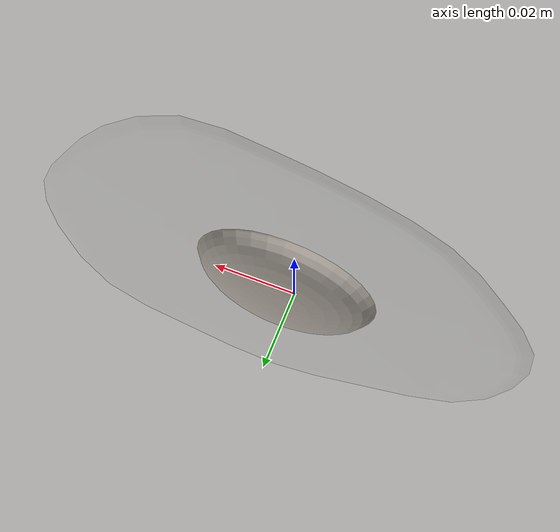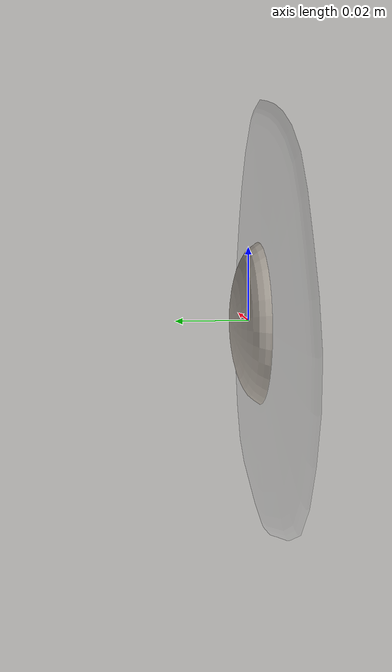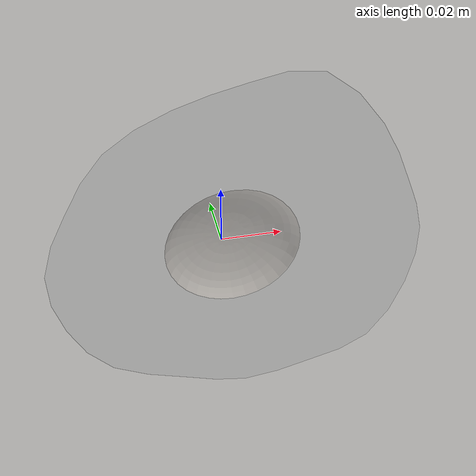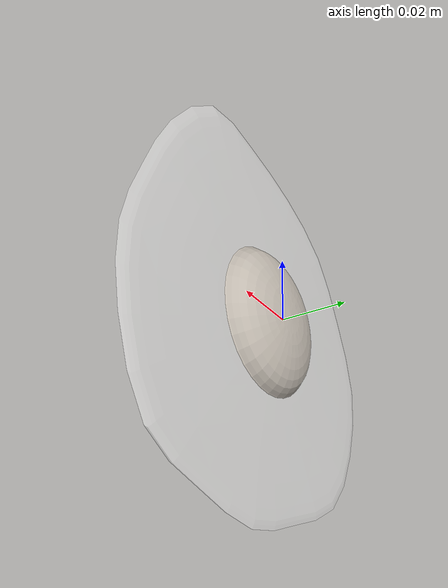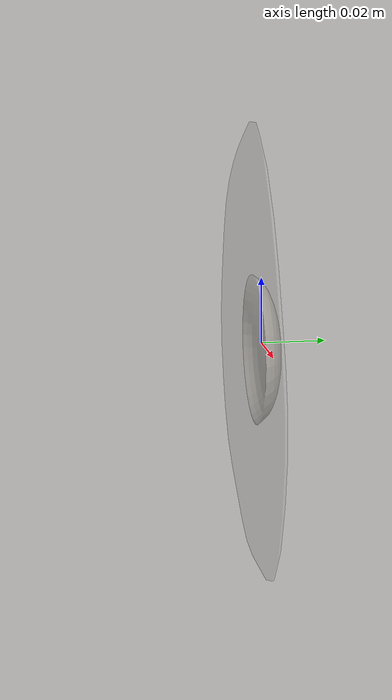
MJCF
<mujoco model="Egg_Cracked_1">
  <compiler autolimits="true" boundmass="0.01" angle="radian"/>
  <default>
    <default class="/">
      <default class="__VISUAL_MJT__">
        <geom contype="0" conaffinity="0" group="0"/>
      </default>
      <default class="__STRUCTURAL_MJT__">
        <geom contype="8" conaffinity="15" group="4" friction="0.90000000000000002 0.90000000000000002 0.001" solref="0.025000000000000001 1" solimp="0.998 0.998 0.001"/>
      </default>
      <default class="__DYNAMIC_MJT__">
        <geom contype="1" conaffinity="15" group="4" friction="0.90000000000000002 0.90000000000000002 0.001" solref="0.025000000000000001 1" solimp="0.998 0.998 0.001"/>
      </default>
    </default>
  </default>
  <asset>
    <texture name="Fried_Egg_White_Uncooked_Mat" type="2d" file="Fried_Egg_AlbedoTransparency.png"/>
    <material name="material_Fried_Egg_White_Uncooked_Mat" class="/" texture="Fried_Egg_White_Uncooked_Mat" specular="0.5" shininess="0.5" rgba="1 1 1 0.5"/>
    <texture name="Fried_Egg_Yolk_Mat" type="2d" file="Fried_Egg_AlbedoTransparency.png"/>
    <material name="material_Fried_Egg_Yolk_Mat" class="/" texture="Fried_Egg_Yolk_Mat" specular="0.5" shininess="0.5" rgba="1 1 1 1"/>
    <mesh name="Egg_Cracked_1_fried_egg_1_0" class="/" file="Egg_Cracked_1_fried_egg_1/Egg_Cracked_1_fried_egg_1_0.obj" scale="1 1 1"/>
    <mesh name="Egg_Cracked_1_fried_egg_1_1" class="/" file="Egg_Cracked_1_fried_egg_1/Egg_Cracked_1_fried_egg_1_1.obj" scale="1 1 1"/>
  </asset>
  <worldbody>
    <body name="Egg_Cracked_1">
      <joint name="Egg_Cracked_1_free" class="/" type="free" pos="0 0 0" axis="0 0 1" stiffness="0" range="0 0" armature="0" damping="0.10000000000000001" frictionloss="0"/>
      <body name="Egg_Cracked_1_fried_egg_1" pos="0.0032100000000000002 -0.0061999999999999998 -0.0011999999999999999" quat="1 0 0 0">
        <geom name="Egg_Cracked_1_fried_egg_1_0" class="__VISUAL_MJT__" type="mesh" material="material_Fried_Egg_White_Uncooked_Mat" shellinertia="false" mesh="Egg_Cracked_1_fried_egg_1_0"/>
        <geom name="Egg_Cracked_1_fried_egg_1_1" class="__VISUAL_MJT__" type="mesh" material="material_Fried_Egg_Yolk_Mat" shellinertia="false" mesh="Egg_Cracked_1_fried_egg_1_1"/>
        <geom name="Egg_Cracked_1_PrimitiveCollider_0" class="__DYNAMIC_MJT__" type="box" size="0.025862300768494606 0.0062014162540435791 0.061919815838336945" rgba="0 1 0 1" pos="-0 0.0062014162540435791 0.0012036636471748352" quat="1 0 0 0"/>
        <geom name="Egg_Cracked_1_PrimitiveCollider_1" class="__DYNAMIC_MJT__" type="box" size="0.025862300768494606 0.0062014162540435791 0.061919815838336945" rgba="0 1 0 1" pos="-1.2118835002183914e-07 0.0062014162540435791 0.0012033811071887612" quat="0.60876172780990601 0 0.79335319995880127 0"/>
        <geom name="Egg_Cracked_1_PrimitiveCollider_2" class="__DYNAMIC_MJT__" type="box" size="0.025862300768494606 0.0062014162540435791 0.062933191657066345" rgba="0 1 0 1" pos="0.0054961279965937138 0.0062014162540435791 -0.0019696168601512909" quat="0.86602568626403809 0 0.49999964237213135 0"/>
      </body>
    </body>
  </worldbody>
</mujoco>
